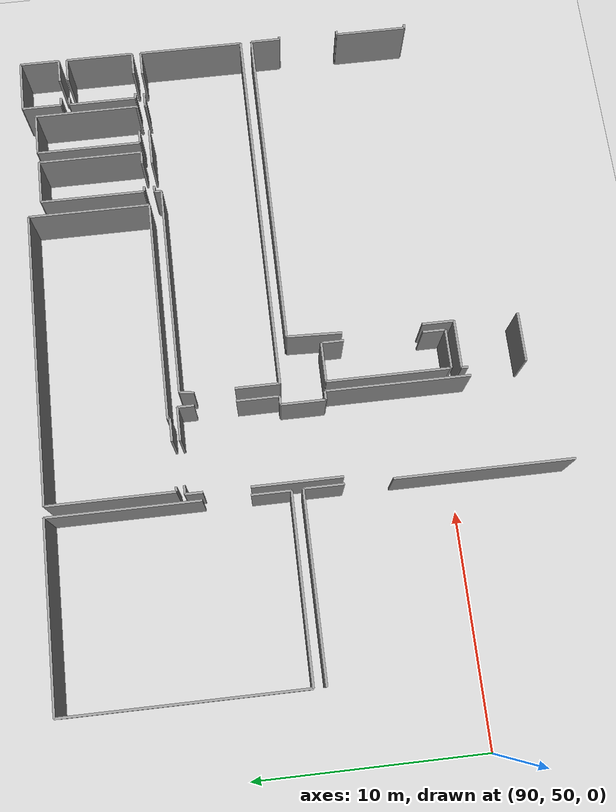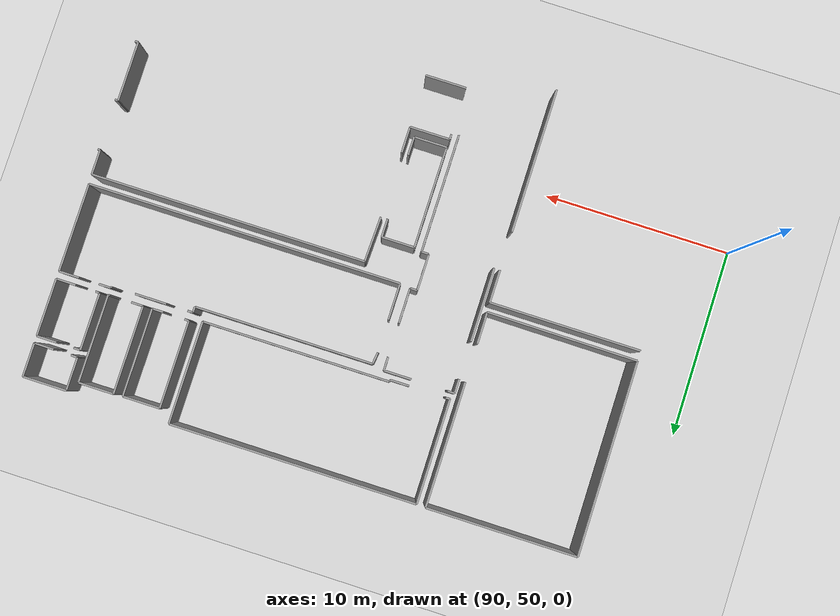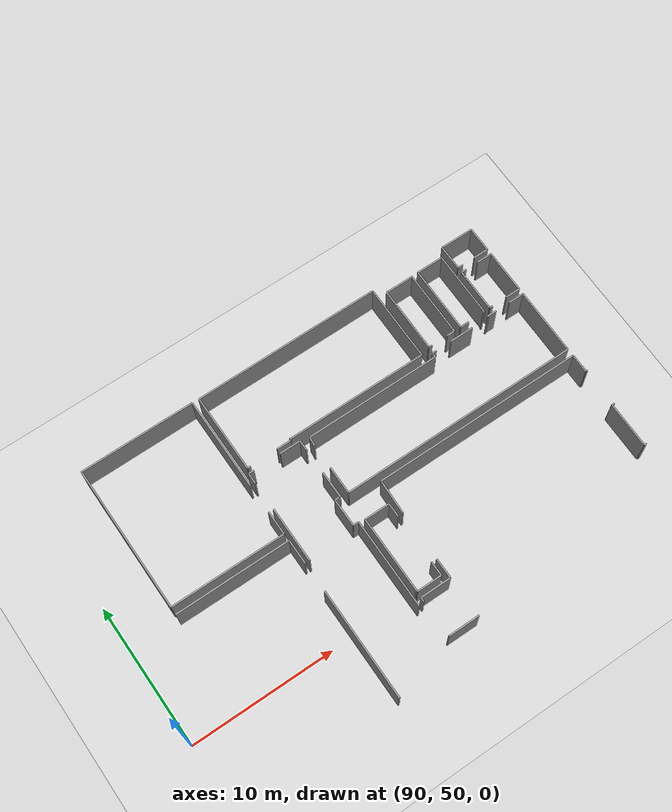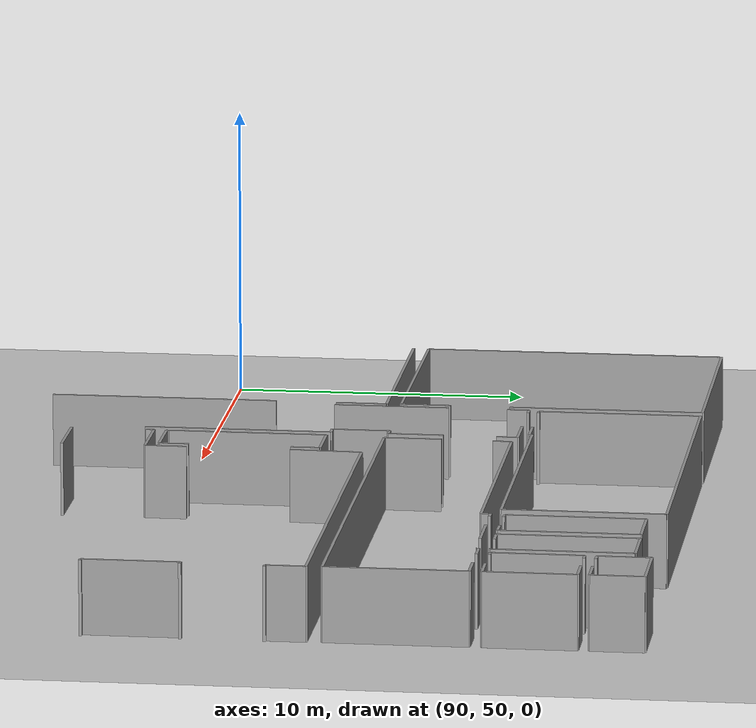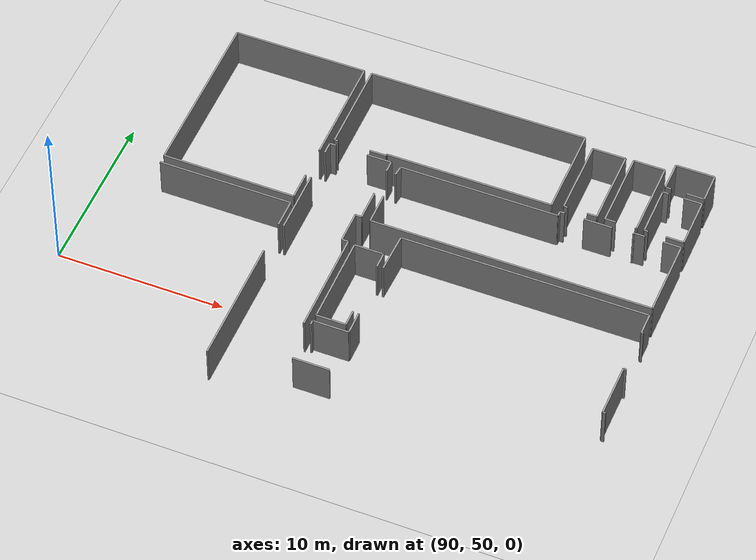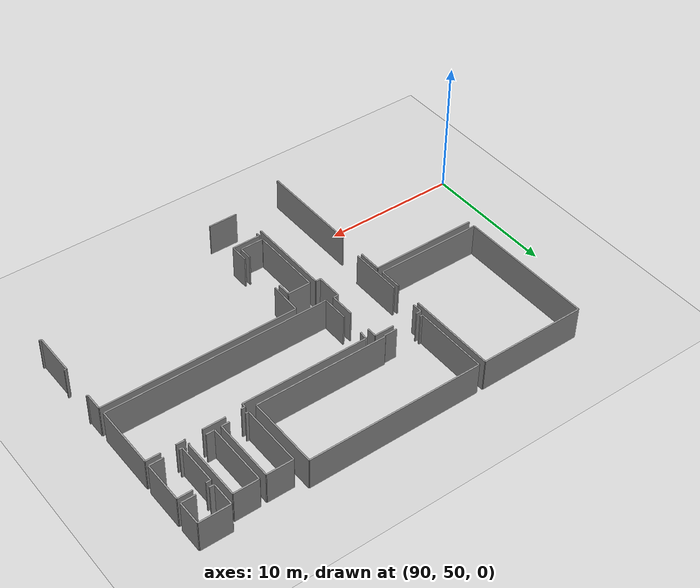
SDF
<sdf version="1.6">
 <world name="default">
  <model name="ground_plane">
   <static>1</static>
   <link name="link">
    <collision name="collision">
     <geometry><plane><normal>0 0 1</normal><size>100 100</size></plane></geometry>
     <surface><friction><ode><mu>100</mu><mu2>50</mu2></ode></friction></surface>
    </collision>
    <visual name="visual">
     <cast_shadows>0</cast_shadows>
     <geometry><plane><normal>0 0 1</normal><size>100 100</size></plane></geometry>
     <material>
      <script><uri>file://media/materials/scripts/gazebo.material</uri><name>Gazebo/Grey</name></script>
     </material>
    </visual>
   </link>
  </model>
  <model name="50036894">
   <static>1</static>
   <link name="Wall_643">
    <collision name="Wall_643_Collision">
     <geometry><box><size>3.90796873118 0.1 2.5</size></box></geometry>
     <pose>1.95398436559 0 1.25 0 0 0</pose>
    </collision>
    <visual name="Wall_643_Visual">
     <pose>1.95398436559 0 1.25 0 0 0</pose>
     <geometry><box><size>3.90796873118 0.1 2.5</size></box></geometry>
     <material>
      <script><uri>file://media/materials/scripts/gazebo.material</uri><name>Gazebo/Grey</name></script>
      <ambient>1 1 1 1</ambient>
     </material>
    </visual>
    <pose>224.466775292 -12.5341566865 0 0 0 1.57079632679</pose>
   </link>
   <link name="Wall_644">
    <collision name="Wall_644_Collision">
     <geometry><box><size>0.745329013688 0.1 2.5</size></box></geometry>
     <pose>0.372664506844 0 1.25 0 0 0</pose>
    </collision>
    <visual name="Wall_644_Visual">
     <pose>0.372664506844 0 1.25 0 0 0</pose>
     <geometry><box><size>0.745329013688 0.1 2.5</size></box></geometry>
     <material>
      <script><uri>file://media/materials/scripts/gazebo.material</uri><name>Gazebo/Grey</name></script>
      <ambient>1 1 1 1</ambient>
     </material>
    </visual>
    <pose>224.466775292 -6.62452687838 0 0 0 1.57079632679</pose>
   </link>
   <link name="Wall_645">
    <collision name="Wall_645_Collision">
     <geometry><box><size>0.377863297174 0.1 2.5</size></box></geometry>
     <pose>0.188931648587 0 1.25 0 0 0</pose>
    </collision>
    <visual name="Wall_645_Visual">
     <pose>0.188931648587 0 1.25 0 0 0</pose>
     <geometry><box><size>0.377863297174 0.1 2.5</size></box></geometry>
     <material>
      <script><uri>file://media/materials/scripts/gazebo.material</uri><name>Gazebo/Grey</name></script>
      <ambient>1 1 1 1</ambient>
     </material>
    </visual>
    <pose>224.466775292 -5.87919786469 0 0 0 0.0</pose>
   </link>
   <link name="Wall_646">
    <collision name="Wall_646_Collision">
     <geometry><box><size>1.4658052736 0.1 2.5</size></box></geometry>
     <pose>0.732902636801 0 1.25 0 0 0</pose>
    </collision>
    <visual name="Wall_646_Visual">
     <pose>0.732902636801 0 1.25 0 0 0</pose>
     <geometry><box><size>1.4658052736 0.1 2.5</size></box></geometry>
     <material>
      <script><uri>file://media/materials/scripts/gazebo.material</uri><name>Gazebo/Grey</name></script>
      <ambient>1 1 1 1</ambient>
     </material>
    </visual>
    <pose>226.754243037 -5.87919786469 0 0 0 0.0</pose>
   </link>
   <link name="Wall_647">
    <collision name="Wall_647_Collision">
     <geometry><box><size>0.718193864159 0.1 2.5</size></box></geometry>
     <pose>0.35909693208 0 1.25 0 0 0</pose>
    </collision>
    <visual name="Wall_647_Visual">
     <pose>0.35909693208 0 1.25 0 0 0</pose>
     <geometry><box><size>0.718193864159 0.1 2.5</size></box></geometry>
     <material>
      <script><uri>file://media/materials/scripts/gazebo.material</uri><name>Gazebo/Grey</name></script>
      <ambient>1 1 1 1</ambient>
     </material>
    </visual>
    <pose>228.220048311 -5.87919786469 0 0 0 -1.57079632679</pose>
   </link>
   <link name="Wall_648">
    <collision name="Wall_648_Collision">
     <geometry><box><size>1.86598532927 0.1 2.5</size></box></geometry>
     <pose>0.932992664634 0 1.25 0 0 0</pose>
    </collision>
    <visual name="Wall_648_Visual">
     <pose>0.932992664634 0 1.25 0 0 0</pose>
     <geometry><box><size>1.86598532927 0.1 2.5</size></box></geometry>
     <material>
      <script><uri>file://media/materials/scripts/gazebo.material</uri><name>Gazebo/Grey</name></script>
      <ambient>1 1 1 1</ambient>
     </material>
    </visual>
    <pose>228.220048311 -8.3870436001 0 0 0 -1.57079632679</pose>
   </link>
   <link name="Wall_649">
    <collision name="Wall_649_Collision">
     <geometry><box><size>0.377863297174 0.1 2.5</size></box></geometry>
     <pose>0.188931648587 0 1.25 0 0 0</pose>
    </collision>
    <visual name="Wall_649_Visual">
     <pose>0.188931648587 0 1.25 0 0 0</pose>
     <geometry><box><size>0.377863297174 0.1 2.5</size></box></geometry>
     <material>
      <script><uri>file://media/materials/scripts/gazebo.material</uri><name>Gazebo/Grey</name></script>
      <ambient>1 1 1 1</ambient>
     </material>
    </visual>
    <pose>228.220048311 -10.2530289294 0 0 0 3.14159265359</pose>
   </link>
   <link name="Wall_650">
    <collision name="Wall_650_Collision">
     <geometry><box><size>1.94181158823 0.1 2.5</size></box></geometry>
     <pose>0.970905794115 0 1.25 0 0 0</pose>
    </collision>
    <visual name="Wall_650_Visual">
     <pose>0.970905794115 0 1.25 0 0 0</pose>
     <geometry><box><size>1.94181158823 0.1 2.5</size></box></geometry>
     <material>
      <script><uri>file://media/materials/scripts/gazebo.material</uri><name>Gazebo/Grey</name></script>
      <ambient>1 1 1 1</ambient>
     </material>
    </visual>
    <pose>227.842185014 -10.2530289294 0 0 0 -1.57079632679</pose>
   </link>
   <link name="Wall_651">
    <collision name="Wall_651_Collision">
     <geometry><box><size>0.390543273589 0.1 2.5</size></box></geometry>
     <pose>0.195271636795 0 1.25 0 0 0</pose>
    </collision>
    <visual name="Wall_651_Visual">
     <pose>0.195271636795 0 1.25 0 0 0</pose>
     <geometry><box><size>0.390543273589 0.1 2.5</size></box></geometry>
     <material>
      <script><uri>file://media/materials/scripts/gazebo.material</uri><name>Gazebo/Grey</name></script>
      <ambient>1 1 1 1</ambient>
     </material>
    </visual>
    <pose>227.842185014 -12.1948405176 0 0 0 0.0</pose>
   </link>
   <link name="Wall_652">
    <collision name="Wall_652_Collision">
     <geometry><box><size>6.30423067413 0.1 2.5</size></box></geometry>
     <pose>3.15211533707 0 1.25 0 0 0</pose>
    </collision>
    <visual name="Wall_652_Visual">
     <pose>3.15211533707 0 1.25 0 0 0</pose>
     <geometry><box><size>6.30423067413 0.1 2.5</size></box></geometry>
     <material>
      <script><uri>file://media/materials/scripts/gazebo.material</uri><name>Gazebo/Grey</name></script>
      <ambient>1 1 1 1</ambient>
     </material>
    </visual>
    <pose>228.232728287 -12.1948405176 0 0 0 -1.57079632679</pose>
   </link>
   <link name="Wall_885">
    <collision name="Wall_885_Collision">
     <geometry><box><size>8.00106511802 0.1 2.5</size></box></geometry>
     <pose>4.00053255901 0 1.25 0 0 0</pose>
    </collision>
    <visual name="Wall_885_Visual">
     <pose>4.00053255901 0 1.25 0 0 0</pose>
     <geometry><box><size>8.00106511802 0.1 2.5</size></box></geometry>
     <material>
      <script><uri>file://media/materials/scripts/gazebo.material</uri><name>Gazebo/Grey</name></script>
      <ambient>1 1 1 1</ambient>
     </material>
    </visual>
    <pose>216.156318749 -10.7891383322 0 0 0 0.0</pose>
   </link>
   <link name="Wall_886">
    <collision name="Wall_886_Collision">
     <geometry><box><size>1.73411357455 0.1 2.5</size></box></geometry>
     <pose>0.867056787274 0 1.25 0 0 0</pose>
    </collision>
    <visual name="Wall_886_Visual">
     <pose>0.867056787274 0 1.25 0 0 0</pose>
     <geometry><box><size>1.73411357455 0.1 2.5</size></box></geometry>
     <material>
      <script><uri>file://media/materials/scripts/gazebo.material</uri><name>Gazebo/Grey</name></script>
      <ambient>1 1 1 1</ambient>
     </material>
    </visual>
    <pose>224.157383867 -10.7891383322 0 0 0 -1.57079632679</pose>
   </link>
   <link name="Wall_887">
    <collision name="Wall_887_Collision">
     <geometry><box><size>7.71373685245 0.1 2.5</size></box></geometry>
     <pose>3.85686842622 0 1.25 0 0 0</pose>
    </collision>
    <visual name="Wall_887_Visual">
     <pose>3.85686842622 0 1.25 0 0 0</pose>
     <geometry><box><size>7.71373685245 0.1 2.5</size></box></geometry>
     <material>
      <script><uri>file://media/materials/scripts/gazebo.material</uri><name>Gazebo/Grey</name></script>
      <ambient>1 1 1 1</ambient>
     </material>
    </visual>
    <pose>224.157383867 -14.5720824959 0 0 0 -1.57079632679</pose>
   </link>
   <link name="Wall_889">
    <collision name="Wall_889_Collision">
     <geometry><box><size>14.6428367643 0.1 2.5</size></box></geometry>
     <pose>7.32141838216 0 1.25 0 0 0</pose>
    </collision>
    <visual name="Wall_889_Visual">
     <pose>7.32141838216 0 1.25 0 0 0</pose>
     <geometry><box><size>14.6428367643 0.1 2.5</size></box></geometry>
     <material>
      <script><uri>file://media/materials/scripts/gazebo.material</uri><name>Gazebo/Grey</name></script>
      <ambient>1 1 1 1</ambient>
     </material>
    </visual>
    <pose>230.827051462 -10.8390974393 0 0 0 0.0</pose>
   </link>
   <link name="Wall_890">
    <collision name="Wall_890_Collision">
     <geometry><box><size>1.3179567486 0.1 2.5</size></box></geometry>
     <pose>0.6589783743 0 1.25 0 0 0</pose>
    </collision>
    <visual name="Wall_890_Visual">
     <pose>0.6589783743 0 1.25 0 0 0</pose>
     <geometry><box><size>1.3179567486 0.1 2.5</size></box></geometry>
     <material>
      <script><uri>file://media/materials/scripts/gazebo.material</uri><name>Gazebo/Grey</name></script>
      <ambient>1 1 1 1</ambient>
     </material>
    </visual>
    <pose>245.469888226 -10.8390974393 0 0 0 -1.57079632679</pose>
   </link>
   <link name="Wall_891">
    <collision name="Wall_891_Collision">
     <geometry><box><size>0.126799764152 0.1 2.5</size></box></geometry>
     <pose>0.0633998820762 0 1.25 0 0 0</pose>
    </collision>
    <visual name="Wall_891_Visual">
     <pose>0.0633998820762 0 1.25 0 0 0</pose>
     <geometry><box><size>0.126799764152 0.1 2.5</size></box></geometry>
     <material>
      <script><uri>file://media/materials/scripts/gazebo.material</uri><name>Gazebo/Grey</name></script>
      <ambient>1 1 1 1</ambient>
     </material>
    </visual>
    <pose>245.469888226 -12.1570541879 0 0 0 0.0</pose>
   </link>
   <link name="Wall_892">
    <collision name="Wall_892_Collision">
     <geometry><box><size>0.177519669813 0.1 2.5</size></box></geometry>
     <pose>0.0887598349067 0 1.25 0 0 0</pose>
    </collision>
    <visual name="Wall_892_Visual">
     <pose>0.0887598349067 0 1.25 0 0 0</pose>
     <geometry><box><size>0.177519669813 0.1 2.5</size></box></geometry>
     <material>
      <script><uri>file://media/materials/scripts/gazebo.material</uri><name>Gazebo/Grey</name></script>
      <ambient>1 1 1 1</ambient>
     </material>
    </visual>
    <pose>245.59668799 -14.8677795459 0 0 0 3.14159265359</pose>
   </link>
   <link name="Wall_893">
    <collision name="Wall_893_Collision">
     <geometry><box><size>3.20676603542 0.1 2.5</size></box></geometry>
     <pose>1.60338301771 0 1.25 0 0 0</pose>
    </collision>
    <visual name="Wall_893_Visual">
     <pose>1.60338301771 0 1.25 0 0 0</pose>
     <geometry><box><size>3.20676603542 0.1 2.5</size></box></geometry>
     <material>
      <script><uri>file://media/materials/scripts/gazebo.material</uri><name>Gazebo/Grey</name></script>
      <ambient>1 1 1 1</ambient>
     </material>
    </visual>
    <pose>245.41916832 -14.8677795459 0 0 0 -1.57079632679</pose>
   </link>
   <link name="Wall_894">
    <collision name="Wall_894_Collision">
     <geometry><box><size>0.17498367453 0.1 2.5</size></box></geometry>
     <pose>0.0874918372652 0 1.25 0 0 0</pose>
    </collision>
    <visual name="Wall_894_Visual">
     <pose>0.0874918372652 0 1.25 0 0 0</pose>
     <geometry><box><size>0.17498367453 0.1 2.5</size></box></geometry>
     <material>
      <script><uri>file://media/materials/scripts/gazebo.material</uri><name>Gazebo/Grey</name></script>
      <ambient>1 1 1 1</ambient>
     </material>
    </visual>
    <pose>245.41916832 -18.0745455813 0 0 0 0.0</pose>
   </link>
   <link name="Wall_900">
    <collision name="Wall_900_Collision">
     <geometry><box><size>2.18856392927 0.1 2.5</size></box></geometry>
     <pose>1.09428196464 0 1.25 0 0 0</pose>
    </collision>
    <visual name="Wall_900_Visual">
     <pose>1.09428196464 0 1.25 0 0 0</pose>
     <geometry><box><size>2.18856392927 0.1 2.5</size></box></geometry>
     <material>
      <script><uri>file://media/materials/scripts/gazebo.material</uri><name>Gazebo/Grey</name></script>
      <ambient>1 1 1 1</ambient>
     </material>
    </visual>
    <pose>230.799155514 -20.9518858295 0 0 0 3.14159265359</pose>
   </link>
   <link name="Wall_901">
    <collision name="Wall_901_Collision">
     <geometry><box><size>0.277437883966 0.1 2.5</size></box></geometry>
     <pose>0.138718941983 0 1.25 0 0 0</pose>
    </collision>
    <visual name="Wall_901_Visual">
     <pose>0.138718941983 0 1.25 0 0 0</pose>
     <geometry><box><size>0.277437883966 0.1 2.5</size></box></geometry>
     <material>
      <script><uri>file://media/materials/scripts/gazebo.material</uri><name>Gazebo/Grey</name></script>
      <ambient>1 1 1 1</ambient>
     </material>
    </visual>
    <pose>228.610591584 -18.4232449328 0 0 0 1.57079632679</pose>
   </link>
   <link name="Wall_902">
    <collision name="Wall_902_Collision">
     <geometry><box><size>2.13277203304 0.1 2.5</size></box></geometry>
     <pose>1.06638601652 0 1.25 0 0 0</pose>
    </collision>
    <visual name="Wall_902_Visual">
     <pose>1.06638601652 0 1.25 0 0 0</pose>
     <geometry><box><size>2.13277203304 0.1 2.5</size></box></geometry>
     <material>
      <script><uri>file://media/materials/scripts/gazebo.material</uri><name>Gazebo/Grey</name></script>
      <ambient>1 1 1 1</ambient>
     </material>
    </visual>
    <pose>228.610591584 -18.1458070488 0 0 0 0.0</pose>
   </link>
   <link name="Wall_903">
    <collision name="Wall_903_Collision">
     <geometry><box><size>1.39936219719 0.1 2.5</size></box></geometry>
     <pose>0.699681098593 0 1.25 0 0 0</pose>
    </collision>
    <visual name="Wall_903_Visual">
     <pose>0.699681098593 0 1.25 0 0 0</pose>
     <geometry><box><size>1.39936219719 0.1 2.5</size></box></geometry>
     <material>
      <script><uri>file://media/materials/scripts/gazebo.material</uri><name>Gazebo/Grey</name></script>
      <ambient>1 1 1 1</ambient>
     </material>
    </visual>
    <pose>230.743363617 -18.1458070488 0 0 0 1.57079632679</pose>
   </link>
   <link name="Wall_904">
    <collision name="Wall_904_Collision">
     <geometry><box><size>2.4192658115 0.1 2.5</size></box></geometry>
     <pose>1.20963290575 0 1.25 0 0 0</pose>
    </collision>
    <visual name="Wall_904_Visual">
     <pose>1.20963290575 0 1.25 0 0 0</pose>
     <geometry><box><size>2.4192658115 0.1 2.5</size></box></geometry>
     <material>
      <script><uri>file://media/materials/scripts/gazebo.material</uri><name>Gazebo/Grey</name></script>
      <ambient>1 1 1 1</ambient>
     </material>
    </visual>
    <pose>230.743363617 -13.2569153421 0 0 0 1.53619717551</pose>
   </link>
   <link name="Wall_905">
    <collision name="Wall_905_Collision">
     <geometry><box><size>5.33522687648 0.1 2.5</size></box></geometry>
     <pose>2.66761343824 0 1.25 0 0 0</pose>
    </collision>
    <visual name="Wall_905_Visual">
     <pose>2.66761343824 0 1.25 0 0 0</pose>
     <geometry><box><size>5.33522687648 0.1 2.5</size></box></geometry>
     <material>
      <script><uri>file://media/materials/scripts/gazebo.material</uri><name>Gazebo/Grey</name></script>
      <ambient>1 1 1 1</ambient>
     </material>
    </visual>
    <pose>228.641023528 -17.6315072054 0 0 0 1.57079632679</pose>
   </link>
   <link name="Wall_906">
    <collision name="Wall_906_Collision">
     <geometry><box><size>1.74730075002 0.1 2.5</size></box></geometry>
     <pose>0.87365037501 0 1.25 0 0 0</pose>
    </collision>
    <visual name="Wall_906_Visual">
     <pose>0.87365037501 0 1.25 0 0 0</pose>
     <geometry><box><size>1.74730075002 0.1 2.5</size></box></geometry>
     <material>
      <script><uri>file://media/materials/scripts/gazebo.material</uri><name>Gazebo/Grey</name></script>
      <ambient>1 1 1 1</ambient>
     </material>
    </visual>
    <pose>228.641023528 -12.2962803289 0 0 0 0.0</pose>
   </link>
   <link name="Wall_907">
    <collision name="Wall_907_Collision">
     <geometry><box><size>0.977372582087 0.1 2.5</size></box></geometry>
     <pose>0.488686291044 0 1.25 0 0 0</pose>
    </collision>
    <visual name="Wall_907_Visual">
     <pose>0.488686291044 0 1.25 0 0 0</pose>
     <geometry><box><size>0.977372582087 0.1 2.5</size></box></geometry>
     <material>
      <script><uri>file://media/materials/scripts/gazebo.material</uri><name>Gazebo/Grey</name></script>
      <ambient>1 1 1 1</ambient>
     </material>
    </visual>
    <pose>230.388324278 -12.2962803289 0 0 0 -1.57079632679</pose>
   </link>
   <link name="Wall_908">
    <collision name="Wall_908_Collision">
     <geometry><box><size>0.999182141521 0.1 2.5</size></box></geometry>
     <pose>0.499591070761 0 1.25 0 0 0</pose>
    </collision>
    <visual name="Wall_908_Visual">
     <pose>0.499591070761 0 1.25 0 0 0</pose>
     <geometry><box><size>0.999182141521 0.1 2.5</size></box></geometry>
     <material>
      <script><uri>file://media/materials/scripts/gazebo.material</uri><name>Gazebo/Grey</name></script>
      <ambient>1 1 1 1</ambient>
     </material>
    </visual>
    <pose>230.388324278 -16.7180417044 0 0 0 -1.57079632679</pose>
   </link>
   <link name="Wall_909">
    <collision name="Wall_909_Collision">
     <geometry><box><size>1.74730075002 0.1 2.5</size></box></geometry>
     <pose>0.87365037501 0 1.25 0 0 0</pose>
    </collision>
    <visual name="Wall_909_Visual">
     <pose>0.87365037501 0 1.25 0 0 0</pose>
     <geometry><box><size>1.74730075002 0.1 2.5</size></box></geometry>
     <material>
      <script><uri>file://media/materials/scripts/gazebo.material</uri><name>Gazebo/Grey</name></script>
      <ambient>1 1 1 1</ambient>
     </material>
    </visual>
    <pose>230.388324278 -17.717223846 0 0 0 3.14159265359</pose>
   </link>
   <link name="Wall_910">
    <collision name="Wall_910_Collision">
     <geometry><box><size>0.085716640567 0.1 2.5</size></box></geometry>
     <pose>0.0428583202835 0 1.25 0 0 0</pose>
    </collision>
    <visual name="Wall_910_Visual">
     <pose>0.0428583202835 0 1.25 0 0 0</pose>
     <geometry><box><size>0.085716640567 0.1 2.5</size></box></geometry>
     <material>
      <script><uri>file://media/materials/scripts/gazebo.material</uri><name>Gazebo/Grey</name></script>
      <ambient>1 1 1 1</ambient>
     </material>
    </visual>
    <pose>228.641023528 -17.717223846 0 0 0 1.57079632679</pose>
   </link>
   <link name="Wall_911">
    <collision name="Wall_911_Collision">
     <geometry><box><size>10.2555649246 0.1 2.5</size></box></geometry>
     <pose>5.12778246232 0 1.25 0 0 0</pose>
    </collision>
    <visual name="Wall_911_Visual">
     <pose>5.12778246232 0 1.25 0 0 0</pose>
     <geometry><box><size>10.2555649246 0.1 2.5</size></box></geometry>
     <material>
      <script><uri>file://media/materials/scripts/gazebo.material</uri><name>Gazebo/Grey</name></script>
      <ambient>1 1 1 1</ambient>
     </material>
    </visual>
    <pose>216.168998726 -10.2555649246 0 0 0 1.57079632679</pose>
   </link>
   <link name="Wall_912">
    <collision name="Wall_912_Collision">
     <geometry><box><size>7.96048919349 0.1 2.5</size></box></geometry>
     <pose>3.98024459675 0 1.25 0 0 0</pose>
    </collision>
    <visual name="Wall_912_Visual">
     <pose>3.98024459675 0 1.25 0 0 0</pose>
     <geometry><box><size>7.96048919349 0.1 2.5</size></box></geometry>
     <material>
      <script><uri>file://media/materials/scripts/gazebo.material</uri><name>Gazebo/Grey</name></script>
      <ambient>1 1 1 1</ambient>
     </material>
    </visual>
    <pose>216.168998726 -0.0 0 0 0 0.0</pose>
   </link>
   <link name="Wall_913">
    <collision name="Wall_913_Collision">
     <geometry><box><size>6.58268295621 0.1 2.5</size></box></geometry>
     <pose>3.2913414781 0 1.25 0 0 0</pose>
    </collision>
    <visual name="Wall_913_Visual">
     <pose>3.2913414781 0 1.25 0 0 0</pose>
     <geometry><box><size>6.58268295621 0.1 2.5</size></box></geometry>
     <material>
      <script><uri>file://media/materials/scripts/gazebo.material</uri><name>Gazebo/Grey</name></script>
      <ambient>1 1 1 1</ambient>
     </material>
    </visual>
    <pose>224.129487919 -0.0 0 0 0 -1.57079632679</pose>
   </link>
   <link name="Wall_914">
    <collision name="Wall_914_Collision">
     <geometry><box><size>1.69658084436 0.1 2.5</size></box></geometry>
     <pose>0.84829042218 0 1.25 0 0 0</pose>
    </collision>
    <visual name="Wall_914_Visual">
     <pose>0.84829042218 0 1.25 0 0 0</pose>
     <geometry><box><size>1.69658084436 0.1 2.5</size></box></geometry>
     <material>
      <script><uri>file://media/materials/scripts/gazebo.material</uri><name>Gazebo/Grey</name></script>
      <ambient>1 1 1 1</ambient>
     </material>
    </visual>
    <pose>224.129487919 -8.59423441472 0 0 0 -1.57079632679</pose>
   </link>
   <link name="Wall_915">
    <collision name="Wall_915_Collision">
     <geometry><box><size>7.9605672402 0.1 2.5</size></box></geometry>
     <pose>3.9802836201 0 1.25 0 0 0</pose>
    </collision>
    <visual name="Wall_915_Visual">
     <pose>3.9802836201 0 1.25 0 0 0</pose>
     <geometry><box><size>7.9605672402 0.1 2.5</size></box></geometry>
     <material>
      <script><uri>file://media/materials/scripts/gazebo.material</uri><name>Gazebo/Grey</name></script>
      <ambient>1 1 1 1</ambient>
     </material>
    </visual>
    <pose>224.129487919 -10.2908152591 0 0 0 3.1371645207</pose>
   </link>
   <link name="Wall_916">
    <collision name="Wall_916_Collision">
     <geometry><box><size>5.51452174299 0.1 2.5</size></box></geometry>
     <pose>2.75726087149 0 1.25 0 0 0</pose>
    </collision>
    <visual name="Wall_916_Visual">
     <pose>2.75726087149 0 1.25 0 0 0</pose>
     <geometry><box><size>5.51452174299 0.1 2.5</size></box></geometry>
     <material>
      <script><uri>file://media/materials/scripts/gazebo.material</uri><name>Gazebo/Grey</name></script>
      <ambient>1 1 1 1</ambient>
     </material>
    </visual>
    <pose>224.608791028 -5.53886729771 0 0 0 1.57079632679</pose>
   </link>
   <link name="Wall_917">
    <collision name="Wall_917_Collision">
     <geometry><box><size>13.0857356605 0.1 2.5</size></box></geometry>
     <pose>6.54286783027 0 1.25 0 0 0</pose>
    </collision>
    <visual name="Wall_917_Visual">
     <pose>6.54286783027 0 1.25 0 0 0</pose>
     <geometry><box><size>13.0857356605 0.1 2.5</size></box></geometry>
     <material>
      <script><uri>file://media/materials/scripts/gazebo.material</uri><name>Gazebo/Grey</name></script>
      <ambient>1 1 1 1</ambient>
     </material>
    </visual>
    <pose>224.608791028 -0.0243455547173 0 0 0 0.0</pose>
   </link>
   <link name="Wall_918">
    <collision name="Wall_918_Collision">
     <geometry><box><size>5.40522034629 0.1 2.5</size></box></geometry>
     <pose>2.70261017315 0 1.25 0 0 0</pose>
    </collision>
    <visual name="Wall_918_Visual">
     <pose>2.70261017315 0 1.25 0 0 0</pose>
     <geometry><box><size>5.40522034629 0.1 2.5</size></box></geometry>
     <material>
      <script><uri>file://media/materials/scripts/gazebo.material</uri><name>Gazebo/Grey</name></script>
      <ambient>1 1 1 1</ambient>
     </material>
    </visual>
    <pose>237.694526688 -0.0243455547173 0 0 0 -1.57079632679</pose>
   </link>
   <link name="Wall_919">
    <collision name="Wall_919_Collision">
     <geometry><box><size>9.9334935237 0.1 2.5</size></box></geometry>
     <pose>4.96674676185 0 1.25 0 0 0</pose>
    </collision>
    <visual name="Wall_919_Visual">
     <pose>4.96674676185 0 1.25 0 0 0</pose>
     <geometry><box><size>9.9334935237 0.1 2.5</size></box></geometry>
     <material>
      <script><uri>file://media/materials/scripts/gazebo.material</uri><name>Gazebo/Grey</name></script>
      <ambient>1 1 1 1</ambient>
     </material>
    </visual>
    <pose>237.694526688 -5.42956590101 0 0 0 3.14159265359</pose>
   </link>
   <link name="Wall_920">
    <collision name="Wall_920_Collision">
     <geometry><box><size>0.0986502165106 0.1 2.5</size></box></geometry>
     <pose>0.0493251082553 0 1.25 0 0 0</pose>
    </collision>
    <visual name="Wall_920_Visual">
     <pose>0.0493251082553 0 1.25 0 0 0</pose>
     <geometry><box><size>0.0986502165106 0.1 2.5</size></box></geometry>
     <material>
      <script><uri>file://media/materials/scripts/gazebo.material</uri><name>Gazebo/Grey</name></script>
      <ambient>1 1 1 1</ambient>
     </material>
    </visual>
    <pose>227.761033164 -5.42956590101 0 0 0 -1.57079632679</pose>
   </link>
   <link name="Wall_921">
    <collision name="Wall_921_Collision">
     <geometry><box><size>0.999182141521 0.1 2.5</size></box></geometry>
     <pose>0.499591070761 0 1.25 0 0 0</pose>
    </collision>
    <visual name="Wall_921_Visual">
     <pose>0.499591070761 0 1.25 0 0 0</pose>
     <geometry><box><size>0.999182141521 0.1 2.5</size></box></geometry>
     <material>
      <script><uri>file://media/materials/scripts/gazebo.material</uri><name>Gazebo/Grey</name></script>
      <ambient>1 1 1 1</ambient>
     </material>
    </visual>
    <pose>227.761033164 -5.52821611752 0 0 0 3.14159265359</pose>
   </link>
   <link name="Wall_922">
    <collision name="Wall_922_Collision">
     <geometry><box><size>0.213289717064 0.1 2.5</size></box></geometry>
     <pose>0.106644858532 0 1.25 0 0 0</pose>
    </collision>
    <visual name="Wall_922_Visual">
     <pose>0.106644858532 0 1.25 0 0 0</pose>
     <geometry><box><size>0.213289717064 0.1 2.5</size></box></geometry>
     <material>
      <script><uri>file://media/materials/scripts/gazebo.material</uri><name>Gazebo/Grey</name></script>
      <ambient>1 1 1 1</ambient>
     </material>
    </visual>
    <pose>224.821814631 -5.52821611752 0 0 0 -3.09163425787</pose>
   </link>
   <link name="Wall_923">
    <collision name="Wall_923_Collision">
     <geometry><box><size>9.45165441992 0.1 2.5</size></box></geometry>
     <pose>4.72582720996 0 1.25 0 0 0</pose>
    </collision>
    <visual name="Wall_923_Visual">
     <pose>4.72582720996 0 1.25 0 0 0</pose>
     <geometry><box><size>9.45165441992 0.1 2.5</size></box></geometry>
     <material>
      <script><uri>file://media/materials/scripts/gazebo.material</uri><name>Gazebo/Grey</name></script>
      <ambient>1 1 1 1</ambient>
     </material>
    </visual>
    <pose>228.859119122 -6.02019920243 0 0 0 0.0</pose>
   </link>
   <link name="Wall_924">
    <collision name="Wall_924_Collision">
     <geometry><box><size>0.307362628306 0.1 2.5</size></box></geometry>
     <pose>0.153681314153 0 1.25 0 0 0</pose>
    </collision>
    <visual name="Wall_924_Visual">
     <pose>0.153681314153 0 1.25 0 0 0</pose>
     <geometry><box><size>0.307362628306 0.1 2.5</size></box></geometry>
     <material>
      <script><uri>file://media/materials/scripts/gazebo.material</uri><name>Gazebo/Grey</name></script>
      <ambient>1 1 1 1</ambient>
     </material>
    </visual>
    <pose>238.310773542 -6.02019920243 0 0 0 1.57079632679</pose>
   </link>
   <link name="Wall_925">
    <collision name="Wall_925_Collision">
     <geometry><box><size>0.289103462268 0.1 2.5</size></box></geometry>
     <pose>0.144551731134 0 1.25 0 0 0</pose>
    </collision>
    <visual name="Wall_925_Visual">
     <pose>0.144551731134 0 1.25 0 0 0</pose>
     <geometry><box><size>0.289103462268 0.1 2.5</size></box></geometry>
     <material>
      <script><uri>file://media/materials/scripts/gazebo.material</uri><name>Gazebo/Grey</name></script>
      <ambient>1 1 1 1</ambient>
     </material>
    </visual>
    <pose>238.310773542 -5.71283657412 0 0 0 0.0</pose>
   </link>
   <link name="Wall_926">
    <collision name="Wall_926_Collision">
     <geometry><box><size>1.6762928821 0.1 2.5</size></box></geometry>
     <pose>0.838146441048 0 1.25 0 0 0</pose>
    </collision>
    <visual name="Wall_926_Visual">
     <pose>0.838146441048 0 1.25 0 0 0</pose>
     <geometry><box><size>1.6762928821 0.1 2.5</size></box></geometry>
     <material>
      <script><uri>file://media/materials/scripts/gazebo.material</uri><name>Gazebo/Grey</name></script>
      <ambient>1 1 1 1</ambient>
     </material>
    </visual>
    <pose>239.728394905 -5.71283657412 0 0 0 0.0</pose>
   </link>
   <link name="Wall_927">
    <collision name="Wall_927_Collision">
     <geometry><box><size>0.0874918372652 0.1 2.5</size></box></geometry>
     <pose>0.0437459186326 0 1.25 0 0 0</pose>
    </collision>
    <visual name="Wall_927_Visual">
     <pose>0.0437459186326 0 1.25 0 0 0</pose>
     <geometry><box><size>0.0874918372652 0.1 2.5</size></box></geometry>
     <material>
      <script><uri>file://media/materials/scripts/gazebo.material</uri><name>Gazebo/Grey</name></script>
      <ambient>1 1 1 1</ambient>
     </material>
    </visual>
    <pose>242.665077443 -5.71283657412 0 0 0 1.57079632679</pose>
   </link>
   <link name="Wall_928">
    <collision name="Wall_928_Collision">
     <geometry><box><size>0.654286783027 0.1 2.5</size></box></geometry>
     <pose>0.327143391513 0 1.25 0 0 0</pose>
    </collision>
    <visual name="Wall_928_Visual">
     <pose>0.327143391513 0 1.25 0 0 0</pose>
     <geometry><box><size>0.654286783027 0.1 2.5</size></box></geometry>
     <material>
      <script><uri>file://media/materials/scripts/gazebo.material</uri><name>Gazebo/Grey</name></script>
      <ambient>1 1 1 1</ambient>
     </material>
    </visual>
    <pose>242.665077443 -5.62534473686 0 0 0 0.0</pose>
   </link>
   <link name="Wall_929">
    <collision name="Wall_929_Collision">
     <geometry><box><size>1.07272600473 0.1 2.5</size></box></geometry>
     <pose>0.536363002365 0 1.25 0 0 0</pose>
    </collision>
    <visual name="Wall_929_Visual">
     <pose>0.536363002365 0 1.25 0 0 0</pose>
     <geometry><box><size>1.07272600473 0.1 2.5</size></box></geometry>
     <material>
      <script><uri>file://media/materials/scripts/gazebo.material</uri><name>Gazebo/Grey</name></script>
      <ambient>1 1 1 1</ambient>
     </material>
    </visual>
    <pose>244.371802268 -5.62534473686 0 0 0 0.0</pose>
   </link>
   <link name="Wall_930">
    <collision name="Wall_930_Collision">
     <geometry><box><size>4.6984384609 0.1 2.5</size></box></geometry>
     <pose>2.34921923045 0 1.25 0 0 0</pose>
    </collision>
    <visual name="Wall_930_Visual">
     <pose>2.34921923045 0 1.25 0 0 0</pose>
     <geometry><box><size>4.6984384609 0.1 2.5</size></box></geometry>
     <material>
      <script><uri>file://media/materials/scripts/gazebo.material</uri><name>Gazebo/Grey</name></script>
      <ambient>1 1 1 1</ambient>
     </material>
    </visual>
    <pose>245.444528273 -5.62534473686 0 0 0 -1.57079632679</pose>
   </link>
   <link name="Wall_931">
    <collision name="Wall_931_Collision">
     <geometry><box><size>16.6690969955 0.1 2.5</size></box></geometry>
     <pose>8.33454849774 0 1.25 0 0 0</pose>
    </collision>
    <visual name="Wall_931_Visual">
     <pose>8.33454849774 0 1.25 0 0 0</pose>
     <geometry><box><size>16.6690969955 0.1 2.5</size></box></geometry>
     <material>
      <script><uri>file://media/materials/scripts/gazebo.material</uri><name>Gazebo/Grey</name></script>
      <ambient>1 1 1 1</ambient>
     </material>
    </visual>
    <pose>245.444528273 -10.3237831978 0 0 0 3.14159265359</pose>
   </link>
   <link name="Wall_932">
    <collision name="Wall_932_Collision">
     <geometry><box><size>1.93673959766 0.1 2.5</size></box></geometry>
     <pose>0.968369798832 0 1.25 0 0 0</pose>
    </collision>
    <visual name="Wall_932_Visual">
     <pose>0.968369798832 0 1.25 0 0 0</pose>
     <geometry><box><size>1.93673959766 0.1 2.5</size></box></geometry>
     <material>
      <script><uri>file://media/materials/scripts/gazebo.material</uri><name>Gazebo/Grey</name></script>
      <ambient>1 1 1 1</ambient>
     </material>
    </visual>
    <pose>228.775431278 -10.3237831978 0 0 0 1.57079632679</pose>
   </link>
   <link name="Wall_933">
    <collision name="Wall_933_Collision">
     <geometry><box><size>0.632459326981 0.1 2.5</size></box></geometry>
     <pose>0.316229663491 0 1.25 0 0 0</pose>
    </collision>
    <visual name="Wall_933_Visual">
     <pose>0.316229663491 0 1.25 0 0 0</pose>
     <geometry><box><size>0.632459326981 0.1 2.5</size></box></geometry>
     <material>
      <script><uri>file://media/materials/scripts/gazebo.material</uri><name>Gazebo/Grey</name></script>
      <ambient>1 1 1 1</ambient>
     </material>
    </visual>
    <pose>228.775431278 -6.6470972364 0 0 0 1.43808581199</pose>
   </link>
   <link name="Wall_934">
    <collision name="Wall_934_Collision">
     <geometry><box><size>4.61196102175 0.1 2.5</size></box></geometry>
     <pose>2.30598051088 0 1.25 0 0 0</pose>
    </collision>
    <visual name="Wall_934_Visual">
     <pose>2.30598051088 0 1.25 0 0 0</pose>
     <geometry><box><size>4.61196102175 0.1 2.5</size></box></geometry>
     <material>
      <script><uri>file://media/materials/scripts/gazebo.material</uri><name>Gazebo/Grey</name></script>
      <ambient>1 1 1 1</ambient>
     </material>
    </visual>
    <pose>238.371637429 -5.2350550628 0 0 0 1.57079632679</pose>
   </link>
   <link name="Wall_935">
    <collision name="Wall_935_Collision">
     <geometry><box><size>1.96539634436 0.1 2.5</size></box></geometry>
     <pose>0.982698172181 0 1.25 0 0 0</pose>
    </collision>
    <visual name="Wall_935_Visual">
     <pose>0.982698172181 0 1.25 0 0 0</pose>
     <geometry><box><size>1.96539634436 0.1 2.5</size></box></geometry>
     <material>
      <script><uri>file://media/materials/scripts/gazebo.material</uri><name>Gazebo/Grey</name></script>
      <ambient>1 1 1 1</ambient>
     </material>
    </visual>
    <pose>238.371637429 -0.623094041045 0 0 0 0.0</pose>
   </link>
   <link name="Wall_936">
    <collision name="Wall_936_Collision">
     <geometry><box><size>4.64290016421 0.1 2.5</size></box></geometry>
     <pose>2.3214500821 0 1.25 0 0 0</pose>
    </collision>
    <visual name="Wall_936_Visual">
     <pose>2.3214500821 0 1.25 0 0 0</pose>
     <geometry><box><size>4.64290016421 0.1 2.5</size></box></geometry>
     <material>
      <script><uri>file://media/materials/scripts/gazebo.material</uri><name>Gazebo/Grey</name></script>
      <ambient>1 1 1 1</ambient>
     </material>
    </visual>
    <pose>240.337033773 -0.623094041045 0 0 0 -1.57079632679</pose>
   </link>
   <link name="Wall_937">
    <collision name="Wall_937_Collision">
     <geometry><box><size>0.580742919818 0.1 2.5</size></box></geometry>
     <pose>0.290371459909 0 1.25 0 0 0</pose>
    </collision>
    <visual name="Wall_937_Visual">
     <pose>0.290371459909 0 1.25 0 0 0</pose>
     <geometry><box><size>0.580742919818 0.1 2.5</size></box></geometry>
     <material>
      <script><uri>file://media/materials/scripts/gazebo.material</uri><name>Gazebo/Grey</name></script>
      <ambient>1 1 1 1</ambient>
     </material>
    </visual>
    <pose>240.337033773 -5.26599420525 0 0 0 3.14159265359</pose>
   </link>
   <link name="Wall_938">
    <collision name="Wall_938_Collision">
     <geometry><box><size>0.235354025638 0.1 2.5</size></box></geometry>
     <pose>0.117677012819 0 1.25 0 0 0</pose>
    </collision>
    <visual name="Wall_938_Visual">
     <pose>0.117677012819 0 1.25 0 0 0</pose>
     <geometry><box><size>0.235354025638 0.1 2.5</size></box></geometry>
     <material>
      <script><uri>file://media/materials/scripts/gazebo.material</uri><name>Gazebo/Grey</name></script>
      <ambient>1 1 1 1</ambient>
     </material>
    </visual>
    <pose>238.604948995 -5.26599420525 0 0 0 3.00975316902</pose>
   </link>
   <link name="Wall_939">
    <collision name="Wall_939_Collision">
     <geometry><box><size>4.65913053402 0.1 2.5</size></box></geometry>
     <pose>2.32956526701 0 1.25 0 0 0</pose>
    </collision>
    <visual name="Wall_939_Visual">
     <pose>2.32956526701 0 1.25 0 0 0</pose>
     <geometry><box><size>4.65913053402 0.1 2.5</size></box></geometry>
     <material>
      <script><uri>file://media/materials/scripts/gazebo.material</uri><name>Gazebo/Grey</name></script>
      <ambient>1 1 1 1</ambient>
     </material>
    </visual>
    <pose>240.818872877 -5.25407502742 0 0 0 1.57079632679</pose>
   </link>
   <link name="Wall_940">
    <collision name="Wall_940_Collision">
     <geometry><box><size>1.86395653304 0.1 2.5</size></box></geometry>
     <pose>0.93197826652 0 1.25 0 0 0</pose>
    </collision>
    <visual name="Wall_940_Visual">
     <pose>0.93197826652 0 1.25 0 0 0</pose>
     <geometry><box><size>1.86395653304 0.1 2.5</size></box></geometry>
     <material>
      <script><uri>file://media/materials/scripts/gazebo.material</uri><name>Gazebo/Grey</name></script>
      <ambient>1 1 1 1</ambient>
     </material>
    </visual>
    <pose>240.818872877 -0.594944493403 0 0 0 0.0</pose>
   </link>
   <link name="Wall_941">
    <collision name="Wall_941_Collision">
     <geometry><box><size>4.65558014062 0.1 2.5</size></box></geometry>
     <pose>2.32779007031 0 1.25 0 0 0</pose>
    </collision>
    <visual name="Wall_941_Visual">
     <pose>2.32779007031 0 1.25 0 0 0</pose>
     <geometry><box><size>4.65558014062 0.1 2.5</size></box></geometry>
     <material>
      <script><uri>file://media/materials/scripts/gazebo.material</uri><name>Gazebo/Grey</name></script>
      <ambient>1 1 1 1</ambient>
     </material>
    </visual>
    <pose>242.68282941 -0.594944493403 0 0 0 -1.57079632679</pose>
   </link>
   <link name="Wall_942">
    <collision name="Wall_942_Collision">
     <geometry><box><size>0.098903816039 0.1 2.5</size></box></geometry>
     <pose>0.0494519080195 0 1.25 0 0 0</pose>
    </collision>
    <visual name="Wall_942_Visual">
     <pose>0.0494519080195 0 1.25 0 0 0</pose>
     <geometry><box><size>0.098903816039 0.1 2.5</size></box></geometry>
     <material>
      <script><uri>file://media/materials/scripts/gazebo.material</uri><name>Gazebo/Grey</name></script>
      <ambient>1 1 1 1</ambient>
     </material>
    </visual>
    <pose>242.68282941 -5.25052463402 0 0 0 3.14159265359</pose>
   </link>
   <link name="Wall_943">
    <collision name="Wall_943_Collision">
     <geometry><box><size>0.634008761786 0.1 2.5</size></box></geometry>
     <pose>0.317004380893 0 1.25 0 0 0</pose>
    </collision>
    <visual name="Wall_943_Visual">
     <pose>0.317004380893 0 1.25 0 0 0</pose>
     <geometry><box><size>0.634008761786 0.1 2.5</size></box></geometry>
     <material>
      <script><uri>file://media/materials/scripts/gazebo.material</uri><name>Gazebo/Grey</name></script>
      <ambient>1 1 1 1</ambient>
     </material>
    </visual>
    <pose>241.452871698 -5.25052463402 0 0 0 -3.13599271213</pose>
   </link>
   <link name="Wall_944">
    <collision name="Wall_944_Collision">
     <geometry><box><size>3.02468157409 0.1 2.5</size></box></geometry>
     <pose>1.51234078705 0 1.25 0 0 0</pose>
    </collision>
    <visual name="Wall_944_Visual">
     <pose>1.51234078705 0 1.25 0 0 0</pose>
     <geometry><box><size>3.02468157409 0.1 2.5</size></box></geometry>
     <material>
      <script><uri>file://media/materials/scripts/gazebo.material</uri><name>Gazebo/Grey</name></script>
      <ambient>1 1 1 1</ambient>
     </material>
    </visual>
    <pose>243.124092589 -5.19701513355 0 0 0 1.57079632679</pose>
   </link>
   <link name="Wall_945">
    <collision name="Wall_945_Collision">
     <geometry><box><size>0.362647325476 0.1 2.5</size></box></geometry>
     <pose>0.181323662738 0 1.25 0 0 0</pose>
    </collision>
    <visual name="Wall_945_Visual">
     <pose>0.181323662738 0 1.25 0 0 0</pose>
     <geometry><box><size>0.362647325476 0.1 2.5</size></box></geometry>
     <material>
      <script><uri>file://media/materials/scripts/gazebo.material</uri><name>Gazebo/Grey</name></script>
      <ambient>1 1 1 1</ambient>
     </material>
    </visual>
    <pose>243.124092589 -2.17233355946 0 0 0 0.0</pose>
   </link>
   <link name="Wall_946">
    <collision name="Wall_946_Collision">
     <geometry><box><size>1.07272600473 0.1 2.5</size></box></geometry>
     <pose>0.536363002365 0 1.25 0 0 0</pose>
    </collision>
    <visual name="Wall_946_Visual">
     <pose>0.536363002365 0 1.25 0 0 0</pose>
     <geometry><box><size>1.07272600473 0.1 2.5</size></box></geometry>
     <material>
      <script><uri>file://media/materials/scripts/gazebo.material</uri><name>Gazebo/Grey</name></script>
      <ambient>1 1 1 1</ambient>
     </material>
    </visual>
    <pose>244.38194625 -2.17233355946 0 0 0 0.0</pose>
   </link>
   <link name="Wall_947">
    <collision name="Wall_947_Collision">
     <geometry><box><size>3.04598393447 0.1 2.5</size></box></geometry>
     <pose>1.52299196723 0 1.25 0 0 0</pose>
    </collision>
    <visual name="Wall_947_Visual">
     <pose>1.52299196723 0 1.25 0 0 0</pose>
     <geometry><box><size>3.04598393447 0.1 2.5</size></box></geometry>
     <material>
      <script><uri>file://media/materials/scripts/gazebo.material</uri><name>Gazebo/Grey</name></script>
      <ambient>1 1 1 1</ambient>
     </material>
    </visual>
    <pose>245.454672254 -2.17233355946 0 0 0 -1.57079632679</pose>
   </link>
   <link name="Wall_948">
    <collision name="Wall_948_Collision">
     <geometry><box><size>1.04483005662 0.1 2.5</size></box></geometry>
     <pose>0.522415028308 0 1.25 0 0 0</pose>
    </collision>
    <visual name="Wall_948_Visual">
     <pose>0.522415028308 0 1.25 0 0 0</pose>
     <geometry><box><size>1.04483005662 0.1 2.5</size></box></geometry>
     <material>
      <script><uri>file://media/materials/scripts/gazebo.material</uri><name>Gazebo/Grey</name></script>
      <ambient>1 1 1 1</ambient>
     </material>
    </visual>
    <pose>245.454672254 -5.21831749393 0 0 0 3.14159265359</pose>
   </link>
   <link name="Wall_949">
    <collision name="Wall_949_Collision">
     <geometry><box><size>0.229231530053 0.1 2.5</size></box></geometry>
     <pose>0.114615765026 0 1.25 0 0 0</pose>
    </collision>
    <visual name="Wall_949_Visual">
     <pose>0.114615765026 0 1.25 0 0 0</pose>
     <geometry><box><size>0.229231530053 0.1 2.5</size></box></geometry>
     <material>
      <script><uri>file://media/materials/scripts/gazebo.material</uri><name>Gazebo/Grey</name></script>
      <ambient>1 1 1 1</ambient>
     </material>
    </visual>
    <pose>243.352332165 -5.21831749393 0 0 0 3.04852892487</pose>
   </link>
   <link name="Wall_950">
    <collision name="Wall_950_Collision">
     <geometry><box><size>1.74476475474 0.1 2.5</size></box></geometry>
     <pose>0.872382377369 0 1.25 0 0 0</pose>
    </collision>
    <visual name="Wall_950_Visual">
     <pose>0.872382377369 0 1.25 0 0 0</pose>
     <geometry><box><size>1.74476475474 0.1 2.5</size></box></geometry>
     <material>
      <script><uri>file://media/materials/scripts/gazebo.material</uri><name>Gazebo/Grey</name></script>
      <ambient>1 1 1 1</ambient>
     </material>
    </visual>
    <pose>243.139308561 -1.7686031104 0 0 0 1.57079632679</pose>
   </link>
   <link name="Wall_951">
    <collision name="Wall_951_Collision">
     <geometry><box><size>2.31282769814 0.1 2.5</size></box></geometry>
     <pose>1.15641384907 0 1.25 0 0 0</pose>
    </collision>
    <visual name="Wall_951_Visual">
     <pose>1.15641384907 0 1.25 0 0 0</pose>
     <geometry><box><size>2.31282769814 0.1 2.5</size></box></geometry>
     <material>
      <script><uri>file://media/materials/scripts/gazebo.material</uri><name>Gazebo/Grey</name></script>
      <ambient>1 1 1 1</ambient>
     </material>
    </visual>
    <pose>243.139308561 -0.0238383556607 0 0 0 0.0</pose>
   </link>
   <link name="Wall_952">
    <collision name="Wall_952_Collision">
     <geometry><box><size>1.7686031104 0.1 2.5</size></box></geometry>
     <pose>0.884301555199 0 1.25 0 0 0</pose>
    </collision>
    <visual name="Wall_952_Visual">
     <pose>0.884301555199 0 1.25 0 0 0</pose>
     <geometry><box><size>1.7686031104 0.1 2.5</size></box></geometry>
     <material>
      <script><uri>file://media/materials/scripts/gazebo.material</uri><name>Gazebo/Grey</name></script>
      <ambient>1 1 1 1</ambient>
     </material>
    </visual>
    <pose>245.452136259 -0.0238383556607 0 0 0 -1.57079632679</pose>
   </link>
   <link name="Wall_953">
    <collision name="Wall_953_Collision">
     <geometry><box><size>1.04483005662 0.1 2.5</size></box></geometry>
     <pose>0.522415028308 0 1.25 0 0 0</pose>
    </collision>
    <visual name="Wall_953_Visual">
     <pose>0.522415028308 0 1.25 0 0 0</pose>
     <geometry><box><size>1.04483005662 0.1 2.5</size></box></geometry>
     <material>
      <script><uri>file://media/materials/scripts/gazebo.material</uri><name>Gazebo/Grey</name></script>
      <ambient>1 1 1 1</ambient>
     </material>
    </visual>
    <pose>245.452136259 -1.79244146606 0 0 0 3.14159265359</pose>
   </link>
   <link name="Wall_954">
    <collision name="Wall_954_Collision">
     <geometry><box><size>0.355838727352 0.1 2.5</size></box></geometry>
     <pose>0.177919363676 0 1.25 0 0 0</pose>
    </collision>
    <visual name="Wall_954_Visual">
     <pose>0.177919363676 0 1.25 0 0 0</pose>
     <geometry><box><size>0.355838727352 0.1 2.5</size></box></geometry>
     <material>
      <script><uri>file://media/materials/scripts/gazebo.material</uri><name>Gazebo/Grey</name></script>
      <ambient>1 1 1 1</ambient>
     </material>
    </visual>
    <pose>243.494347901 -1.79244146606 0 0 0 3.07455042139</pose>
   </link>
   <pose>-122.8 67.3347215794 0 0 0 0</pose>
  </model>
 </world>
</sdf>
